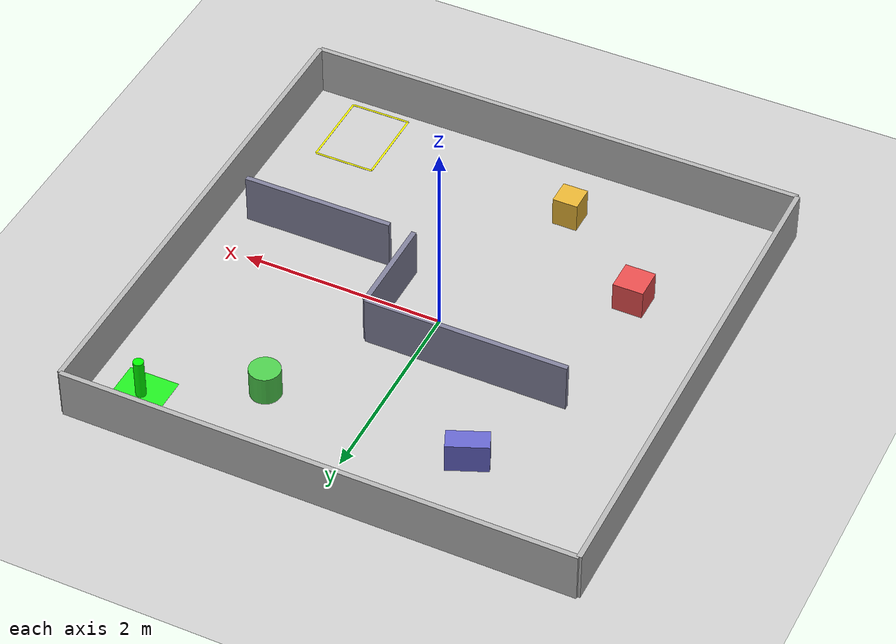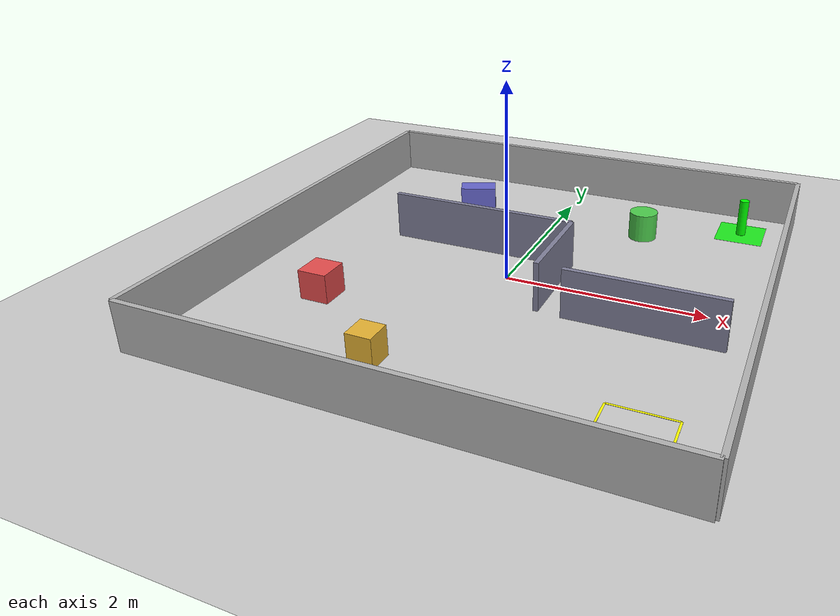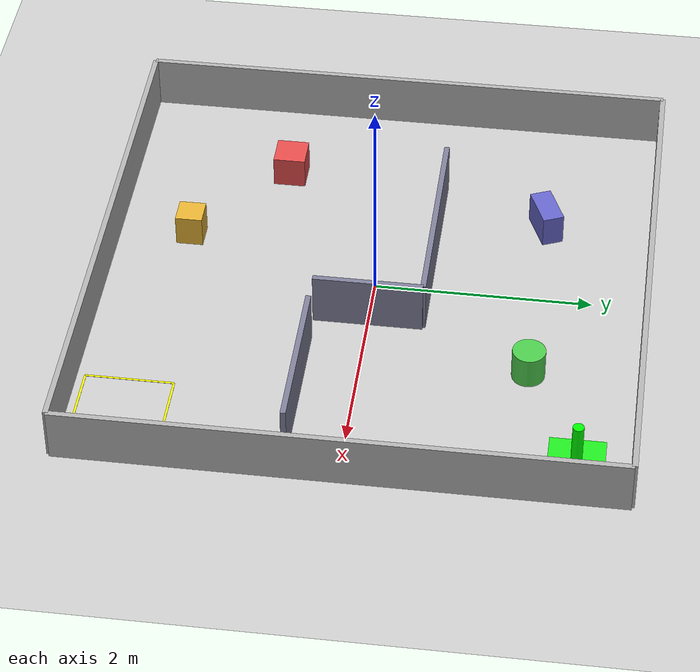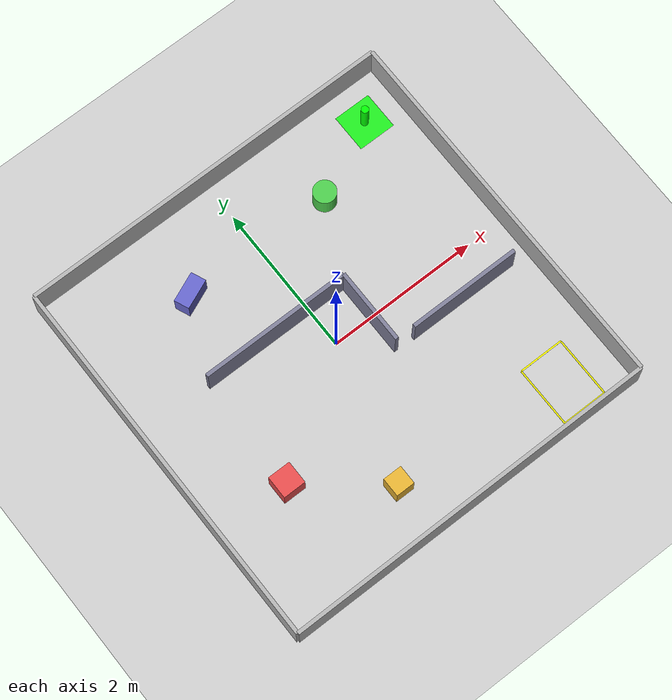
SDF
<?xml version="1.0" ?>
<sdf version="1.6">
  <world name="test_arena">

    <!-- Physics — tuned for stable small-robot simulation -->
    <physics type="ode">
      <max_step_size>0.001</max_step_size>
      <real_time_factor>1.0</real_time_factor>
      <real_time_update_rate>1000</real_time_update_rate>
      <gravity>0 0 -9.81</gravity>
      <ode>
        <solver>
          <type>world</type>
          <iters>50</iters>
          <sor>1.3</sor>
        </solver>
        <constraints>
          <cfm>0.0</cfm>
          <erp>0.2</erp>
          <contact_max_correcting_vel>100.0</contact_max_correcting_vel>
          <contact_surface_layer>0.001</contact_surface_layer>
        </constraints>
      </ode>
    </physics>

    <!-- Lighting -->
    <include>
      <uri>model://sun</uri>
    </include>

    <!--       EXPLICIT GROUND PLANE                  -->
    <model name="ground_plane">
      <static>true</static>
      <link name="link">
        <collision name="collision">
          <geometry>
            <plane>
              <normal>0 0 1</normal>
              <size>100 100</size>
            </plane>
          </geometry>
          <surface>
            <friction>
              <ode>
                <mu>100</mu>
                <mu2>50</mu2>
              </ode>
            </friction>
            <contact>
              <ode>
                <kp>1000000.0</kp>
                <kd>100.0</kd>
                <max_vel>0.1</max_vel>
                <min_depth>0.001</min_depth>
              </ode>
            </contact>
          </surface>
        </collision>
        <visual name="visual">
          <cast_shadows>false</cast_shadows>
          <geometry>
            <plane>
              <normal>0 0 1</normal>
              <size>100 100</size>
            </plane>
          </geometry>
          <material>
            <ambient>0.8 0.8 0.8 1</ambient>
            <diffuse>0.8 0.8 0.8 1</diffuse>
          </material>
        </visual>
      </link>
    </model>

    <!--           PERIMETER WALLS (5m x 5m)         -->

    <!-- North Wall -->
    <model name="wall_north">
      <static>true</static>
      <pose>0 2.5 0.25 0 0 0</pose>
      <link name="link">
        <collision name="collision">
          <geometry><box><size>5.0 0.05 0.5</size></box></geometry>
        </collision>
        <visual name="visual">
          <geometry><box><size>5.0 0.05 0.5</size></box></geometry>
          <material>
            <ambient>0.6 0.6 0.6 1</ambient>
            <diffuse>0.7 0.7 0.7 1</diffuse>
          </material>
        </visual>
      </link>
    </model>

    <!-- South Wall -->
    <model name="wall_south">
      <static>true</static>
      <pose>0 -2.5 0.25 0 0 0</pose>
      <link name="link">
        <collision name="collision">
          <geometry><box><size>5.0 0.05 0.5</size></box></geometry>
        </collision>
        <visual name="visual">
          <geometry><box><size>5.0 0.05 0.5</size></box></geometry>
          <material>
            <ambient>0.6 0.6 0.6 1</ambient>
            <diffuse>0.7 0.7 0.7 1</diffuse>
          </material>
        </visual>
      </link>
    </model>

    <!-- East Wall -->
    <model name="wall_east">
      <static>true</static>
      <pose>2.5 0 0.25 0 0 0</pose>
      <link name="link">
        <collision name="collision">
          <geometry><box><size>0.05 5.0 0.5</size></box></geometry>
        </collision>
        <visual name="visual">
          <geometry><box><size>0.05 5.0 0.5</size></box></geometry>
          <material>
            <ambient>0.6 0.6 0.6 1</ambient>
            <diffuse>0.7 0.7 0.7 1</diffuse>
          </material>
        </visual>
      </link>
    </model>

    <!-- West Wall -->
    <model name="wall_west">
      <static>true</static>
      <pose>-2.5 0 0.25 0 0 0</pose>
      <link name="link">
        <collision name="collision">
          <geometry><box><size>0.05 5.0 0.5</size></box></geometry>
        </collision>
        <visual name="visual">
          <geometry><box><size>0.05 5.0 0.5</size></box></geometry>
          <material>
            <ambient>0.6 0.6 0.6 1</ambient>
            <diffuse>0.7 0.7 0.7 1</diffuse>
          </material>
        </visual>
      </link>
    </model>

    <!--        INTERNAL CORRIDOR WALLS               -->

    <model name="corridor_wall_1">
      <static>true</static>
      <pose>-0.5 0.5 0.25 0 0 0</pose>
      <link name="link">
        <collision name="collision">
          <geometry><box><size>2.0 0.05 0.5</size></box></geometry>
        </collision>
        <visual name="visual">
          <geometry><box><size>2.0 0.05 0.5</size></box></geometry>
          <material>
            <ambient>0.4 0.4 0.5 1</ambient>
            <diffuse>0.5 0.5 0.6 1</diffuse>
          </material>
        </visual>
      </link>
    </model>

    <model name="corridor_wall_2">
      <static>true</static>
      <pose>1.5 -0.5 0.25 0 0 0</pose>
      <link name="link">
        <collision name="collision">
          <geometry><box><size>1.5 0.05 0.5</size></box></geometry>
        </collision>
        <visual name="visual">
          <geometry><box><size>1.5 0.05 0.5</size></box></geometry>
          <material>
            <ambient>0.4 0.4 0.5 1</ambient>
            <diffuse>0.5 0.5 0.6 1</diffuse>
          </material>
        </visual>
      </link>
    </model>

    <model name="corridor_wall_3">
      <static>true</static>
      <pose>0.5 0 0.25 0 0 0</pose>
      <link name="link">
        <collision name="collision">
          <geometry><box><size>0.05 1.0 0.5</size></box></geometry>
        </collision>
        <visual name="visual">
          <geometry><box><size>0.05 1.0 0.5</size></box></geometry>
          <material>
            <ambient>0.4 0.4 0.5 1</ambient>
            <diffuse>0.5 0.5 0.6 1</diffuse>
          </material>
        </visual>
      </link>
    </model>

    <!--          STATIC OBSTACLES                    -->

    <model name="obstacle_1">
      <static>true</static>
      <pose>-1.5 -1.0 0.15 0 0 0</pose>
      <link name="link">
        <collision name="collision">
          <geometry><box><size>0.3 0.3 0.3</size></box></geometry>
        </collision>
        <visual name="visual">
          <geometry><box><size>0.3 0.3 0.3</size></box></geometry>
          <material>
            <ambient>0.8 0.2 0.2 1</ambient>
            <diffuse>0.9 0.3 0.3 1</diffuse>
          </material>
        </visual>
      </link>
    </model>

    <model name="obstacle_2">
      <static>true</static>
      <pose>1.0 1.5 0.15 0 0 0</pose>
      <link name="link">
        <collision name="collision">
          <geometry><cylinder><radius>0.15</radius><length>0.3</length></cylinder></geometry>
        </collision>
        <visual name="visual">
          <geometry><cylinder><radius>0.15</radius><length>0.3</length></cylinder></geometry>
          <material>
            <ambient>0.2 0.7 0.2 1</ambient>
            <diffuse>0.3 0.8 0.3 1</diffuse>
          </material>
        </visual>
      </link>
    </model>

    <model name="obstacle_3">
      <static>true</static>
      <pose>-0.5 -1.8 0.15 0 0 0</pose>
      <link name="link">
        <collision name="collision">
          <geometry><box><size>0.25 0.25 0.3</size></box></geometry>
        </collision>
        <visual name="visual">
          <geometry><box><size>0.25 0.25 0.3</size></box></geometry>
          <material>
            <ambient>0.8 0.6 0.1 1</ambient>
            <diffuse>0.9 0.7 0.2 1</diffuse>
          </material>
        </visual>
      </link>
    </model>

    <model name="obstacle_4">
      <static>true</static>
      <pose>-1.0 1.5 0.15 0 0 0.4</pose>
      <link name="link">
        <collision name="collision">
          <geometry><box><size>0.4 0.2 0.3</size></box></geometry>
        </collision>
        <visual name="visual">
          <geometry><box><size>0.4 0.2 0.3</size></box></geometry>
          <material>
            <ambient>0.3 0.3 0.7 1</ambient>
            <diffuse>0.4 0.4 0.8 1</diffuse>
          </material>
        </visual>
      </link>
    </model>

    <!--           PARKING ZONE (bottom-right)       -->

    <model name="parking_line_left">
      <static>true</static>
      <pose>1.5 -2.0 0.001 0 0 0</pose>
      <link name="link">
        <visual name="visual">
          <geometry><box><size>0.02 0.8 0.002</size></box></geometry>
          <material>
            <ambient>1.0 1.0 0.0 1</ambient>
            <diffuse>1.0 1.0 0.0 1</diffuse>
          </material>
        </visual>
      </link>
    </model>

    <model name="parking_line_right">
      <static>true</static>
      <pose>2.1 -2.0 0.001 0 0 0</pose>
      <link name="link">
        <visual name="visual">
          <geometry><box><size>0.02 0.8 0.002</size></box></geometry>
          <material>
            <ambient>1.0 1.0 0.0 1</ambient>
            <diffuse>1.0 1.0 0.0 1</diffuse>
          </material>
        </visual>
      </link>
    </model>

    <model name="parking_line_back">
      <static>true</static>
      <pose>1.8 -2.4 0.001 0 0 0</pose>
      <link name="link">
        <visual name="visual">
          <geometry><box><size>0.6 0.02 0.002</size></box></geometry>
          <material>
            <ambient>1.0 1.0 0.0 1</ambient>
            <diffuse>1.0 1.0 0.0 1</diffuse>
          </material>
        </visual>
      </link>
    </model>

    <model name="parking_line_front">
      <static>true</static>
      <pose>1.8 -1.6 0.001 0 0 0</pose>
      <link name="link">
        <visual name="visual">
          <geometry><box><size>0.6 0.02 0.002</size></box></geometry>
          <material>
            <ambient>1.0 1.0 0.0 1</ambient>
            <diffuse>1.0 1.0 0.0 1</diffuse>
          </material>
        </visual>
      </link>
    </model>

    <!--           GOAL AREA (top-right)             -->

    <model name="goal_marker">
      <static>true</static>
      <pose>2.0 2.0 0.001 0 0 0</pose>
      <link name="link">
        <visual name="visual">
          <geometry><box><size>0.5 0.5 0.002</size></box></geometry>
          <material>
            <ambient>0.0 0.9 0.0 0.8</ambient>
            <diffuse>0.0 1.0 0.0 0.8</diffuse>
          </material>
        </visual>
      </link>
    </model>

    <model name="goal_beacon">
      <static>true</static>
      <pose>2.0 2.0 0.2 0 0 0</pose>
      <link name="link">
        <visual name="visual">
          <geometry><cylinder><radius>0.05</radius><length>0.4</length></cylinder></geometry>
          <material>
            <ambient>0.0 1.0 0.0 1</ambient>
            <diffuse>0.0 1.0 0.0 1</diffuse>
          </material>
        </visual>
      </link>
    </model>

  </world>
</sdf>
